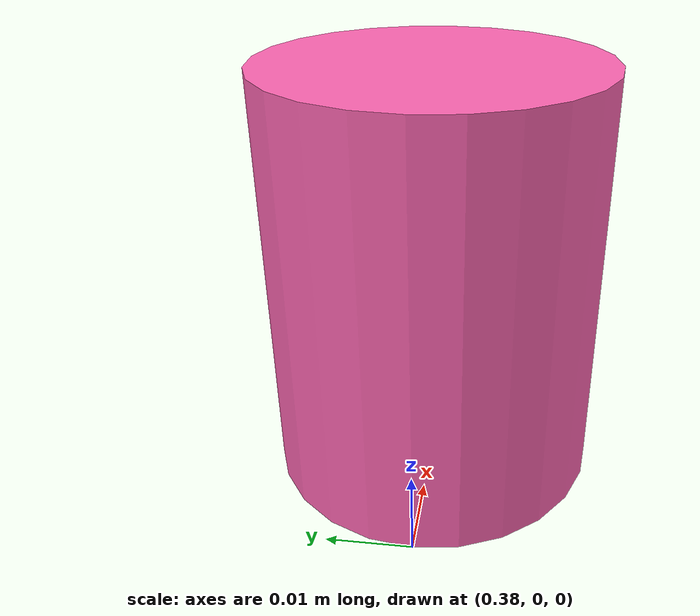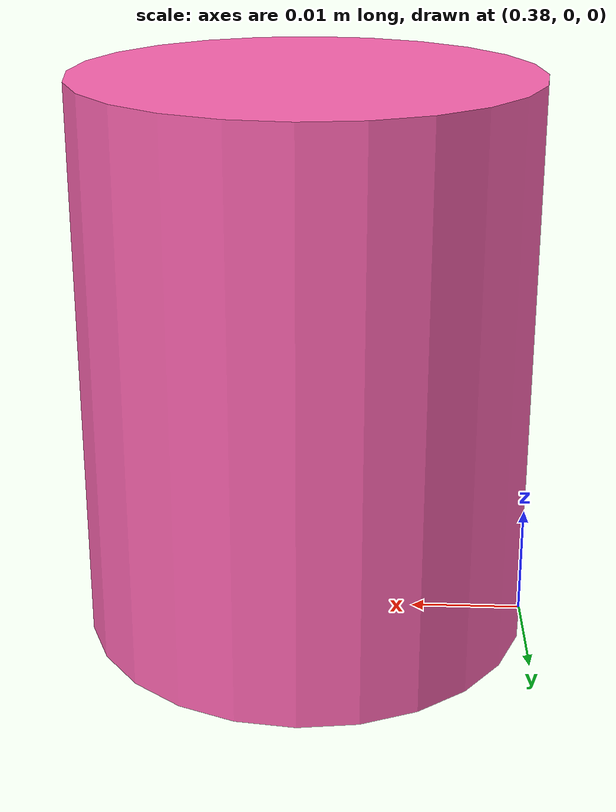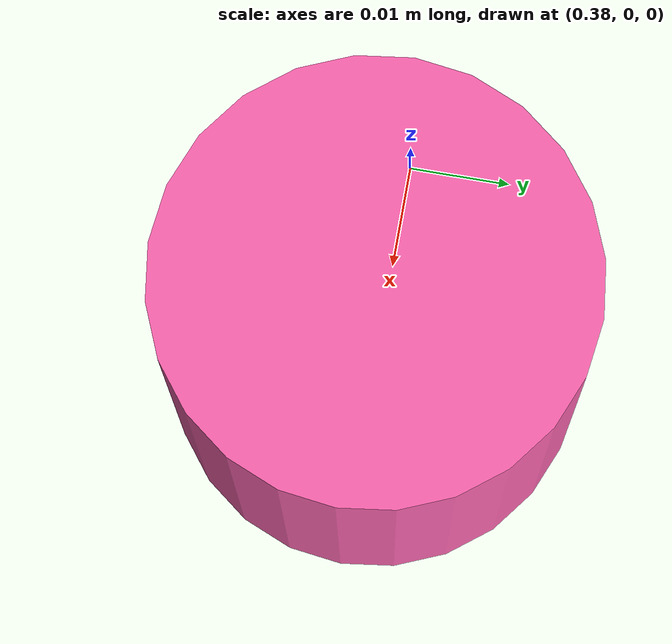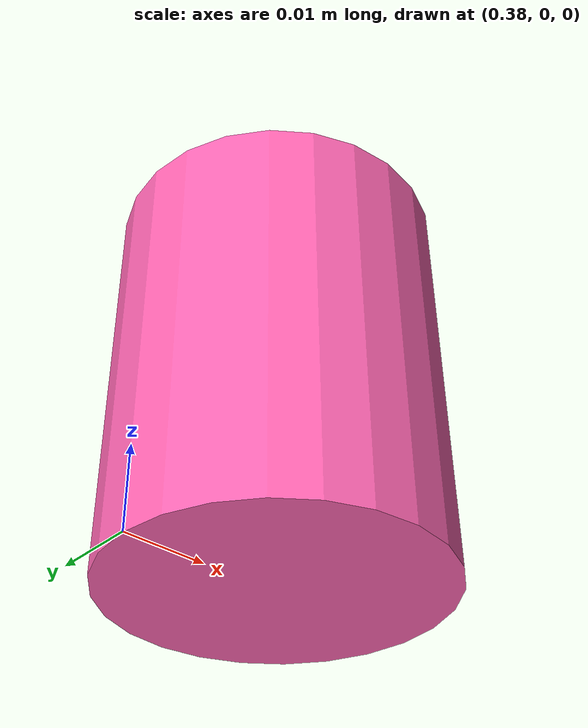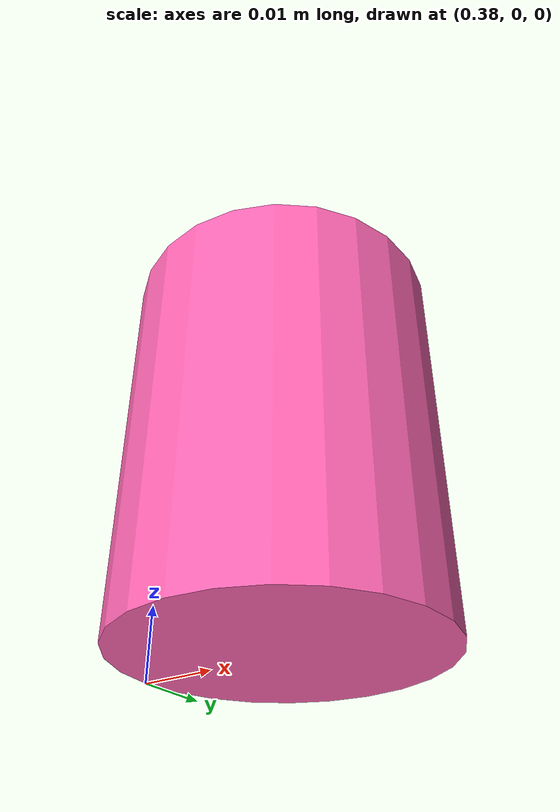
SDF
<?xml version="1.0" ?>
<sdf version="1.9">
  <model name="pink_cylinder">
    <pose>0.4 0.0 0.025 0 0 0</pose>

    <link name="link">
      <inertial>
        <mass>0.15</mass>  <!-- 150克，更轻 -->
        <inertia>
          <ixx>0.00008</ixx>
          <ixy>0</ixy>
          <ixz>0</ixz>
          <iyy>0.00008</iyy>
          <iyz>0</iyz>
          <izz>0.00004</izz>
        </inertia>
      </inertial>

      <!-- 增加阻尼防止乱动 -->
      <velocity_decay>
        <linear>0.5</linear>  <!-- 线性速度衰减 -->
        <angular>0.5</angular> <!-- 角速度衰减 -->
      </velocity_decay>

      <visual name="visual">
        <geometry>
          <cylinder>
            <radius>0.02</radius>
            <length>0.05</length>
          </cylinder>
        </geometry>
        <material>
          <ambient>1.0 0.4 0.7 1</ambient>
          <diffuse>1.0 0.4 0.7 1</diffuse>
          <specular>0.2 0.2 0.2 1</specular>
        </material>
      </visual>

      <collision name="collision">
        <geometry>
          <cylinder>
            <radius>0.02</radius>
            <length>0.05</length>
          </cylinder>
        </geometry>
        <surface>
          <friction>
            <ode>
              <mu>10</mu>      <!-- 适度摩擦 -->
              <mu2>5</mu2>
            </ode>
          </friction>
          <bounce>
            <restitution_coefficient>0.1</restitution_coefficient> <!-- 很小反弹 -->
          </bounce>
        </surface>
      </collision>
    </link>
  </model>
</sdf>
